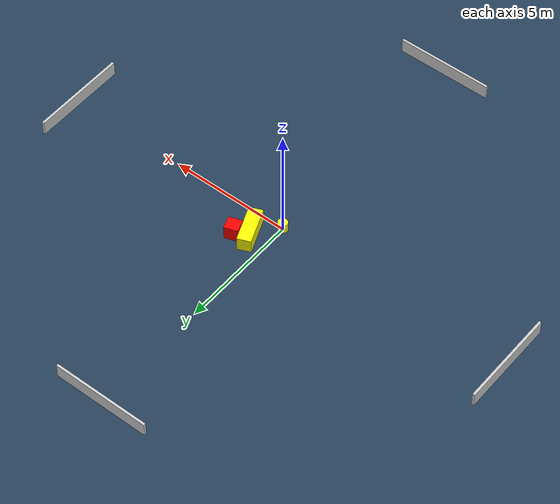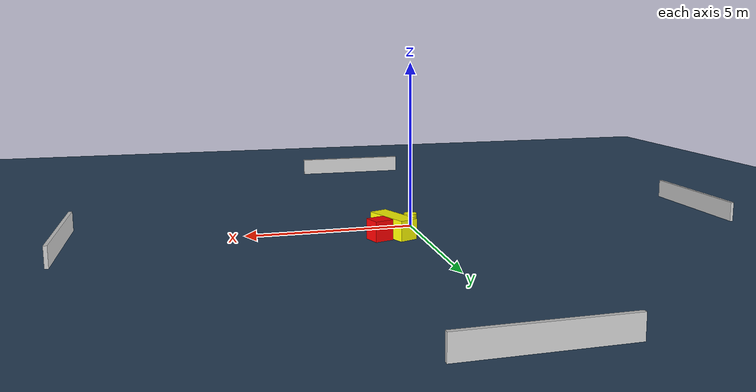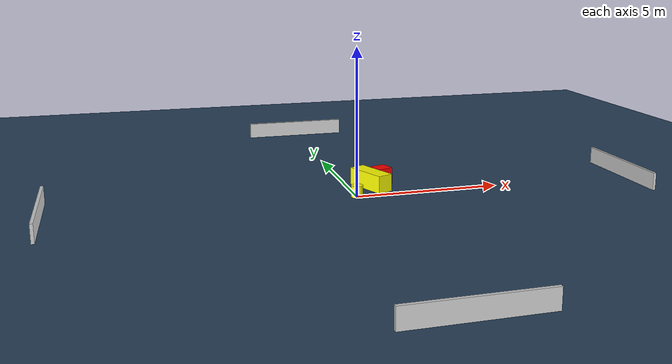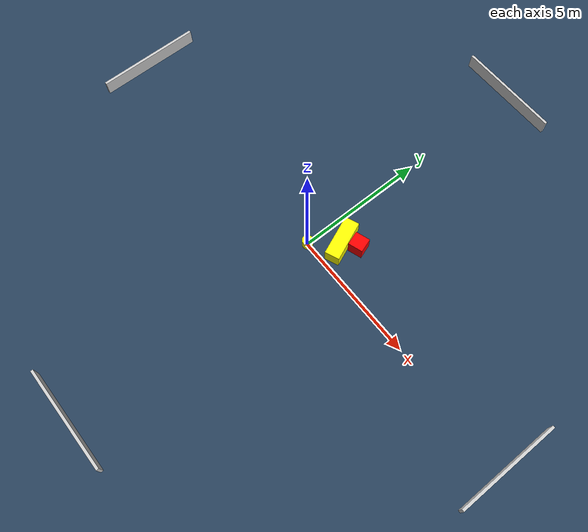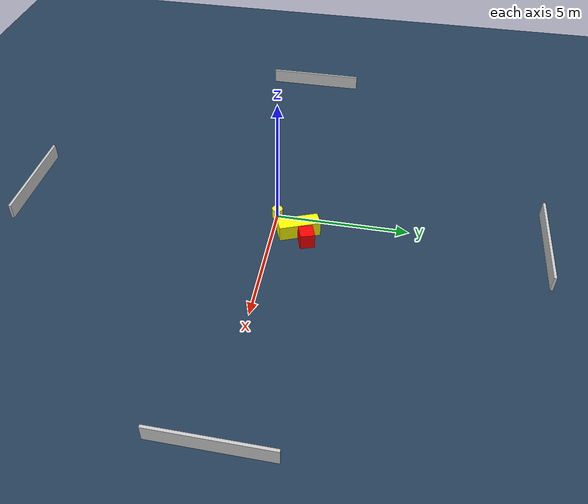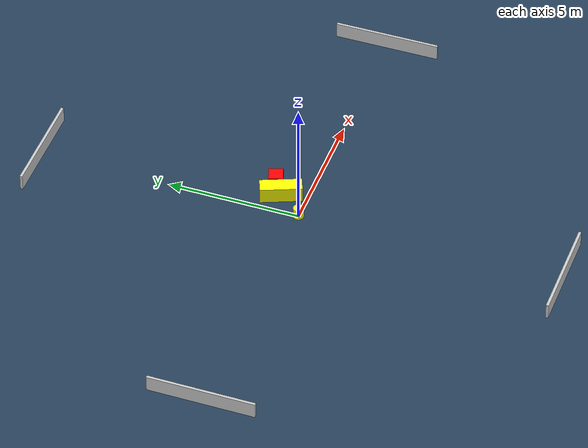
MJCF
<?xml version="1.0" ?>
<mujoco model="generated_environment">
  <option timestep="0.01" integrator="RK4" cone="elliptic"/>
  <default>
    <geom density="1"/>
  </default>
  <asset>
    <texture builtin="gradient" height="3072" name="skybox" rgb1="0.3 0.5 0.7" rgb2="0 0 0" type="skybox" width="512"/>
    <texture builtin="checker" height="300" name="groundplane" rgb1="0.2 0.3 0.4" rgb2="0.1 0.2 0.3" type="2d" width="300"/>
    <material name="groundplane" reflectance="0.2" texrepeat="5 5" texture="groundplane"/>
  </asset>
  <worldbody>
    <light dir="0 0 -1" directional="true" pos="0 0 1.5"/>
    <geom condim="3" friction="0.5 0.005 0.001" material="groundplane" name="floor" pos="0 0 0" size="0 0 0.05" type="plane"/>
    <body name="walls">
      <geom name="wall_1" condim="4" pos="-10.0 0.0 0.3" rgba="0.800000011920929 0.800000011920929 0.800000011920929 1.0" size="0.05 2.0 0.3" type="box"/>
      <geom name="wall_2" condim="4" pos="10.0 0.0 0.3" rgba="0.800000011920929 0.800000011920929 0.800000011920929 1.0" size="0.05 2.0 0.3" type="box"/>
      <geom name="wall_3" condim="4" pos="0.0 -10.0 0.3" rgba="0.800000011920929 0.800000011920929 0.800000011920929 1.0" size="2.0 0.05 0.3" type="box"/>
      <geom name="wall_4" condim="4" pos="0.0 10.0 0.3" rgba="0.800000011920929 0.800000011920929 0.800000011920929 1.0" size="2.0 0.05 0.3" type="box"/>
    </body>
    <body name="robot">
      <joint name="joint_x" type="slide" pos="0 0 0" axis="1 0 0"/>
      <joint name="joint_y" type="slide" pos="0 0 0" axis="0 1 0"/>
      <geom name="robot" type="cylinder" pos="0.0 0.0 0.2" size="0.2 0.2 0.0" mass="5.0" friction="1.0 0.005 0.0001" condim="4" rgba="1.0 1.0 0.0 1.0"/>
    </body>
    <body name="obstacle_1_movable">
      <geom name="obstacle_1_movable" condim="4" pos="0.7692872661934544 0.9517303514754921 0.3" euler="0 0 112.35412079230444" friction="0.0 0.005 0.001" rgba="1.0 1.0 0.0 1.0" size="0.7773478948587496 0.2774195618802138 0.3" type="box" mass="0.1"/>
      <joint type="free"/>
    </body>
    <body name="obstacle_2_static">
      <geom name="obstacle_2_static" condim="4" pos="1.2571529820300475 1.3207528262569241 0.3" euler="0 0 198.60137493332314" friction="0.0 0.005 0.001" rgba="1.0 0.0 0.0 1.0" size="0.2801510442034601 0.2689292353170672 0.3" type="box"/>
    </body>
  </worldbody>
  <actuator>
    <motor name="actuator_x" joint="joint_x" gear="1" ctrlrange="-1 1"/>
    <motor name="actuator_y" joint="joint_y" gear="1" ctrlrange="-1 1"/>
  </actuator>
</mujoco>
